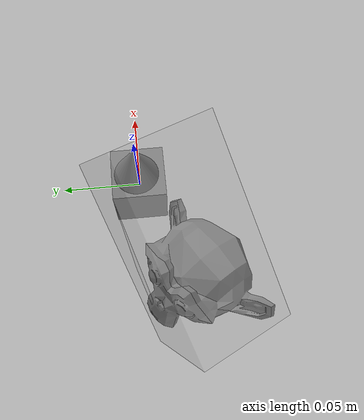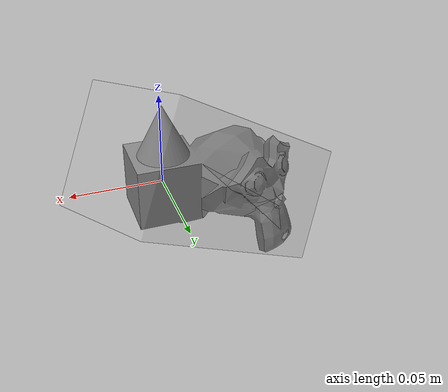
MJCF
<mujoco model="blender">
  <asset>
    <mesh file="meshes/blender/blender.stl" name="blender_vis" scale="0.04 0.04 0.04" />
    <mesh file="meshes/blender/blender_coll.stl" name="blender_coll" scale="0.04 0.04 0.04" />
    <mesh file="meshes/blender/blender_bb.stl" name="blender_bb" scale="0.04 0.04 0.04" />
  </asset>
  <worldbody>
    <body>
      <body name="object">
        <geom conaffinity="0" contype="0" group="1" mesh="blender_vis" name="blender_visual" type="mesh" />
        <geom density="100" friction="0.95 0.3 0.1" group="0" mesh="blender_coll" name="blender_collision" rgba="0.8 0.8 0.8 0.3" solimp="0.998 0.998 0.001" solref="0.001 1" type="mesh" />
        <geom conaffinity="0" contype="0" group="1" mesh="blender_bb" name="blender_boundingbox" rgba="0.8 0.8 0.8 0.1" type="mesh" />
      </body>
      <site name="bottom_site" pos="0 0 -0.06" rgba="0 0 0 0" size="0.005" />
      <site name="top_site" pos="0 0 0.04" rgba="0 0 0 0" size="0.005" />
      <site name="horizontal_radius_site" pos="0.025 0.025 0" rgba="0 0 0 0" size="0.005" />
    </body>
  </worldbody>
</mujoco>
